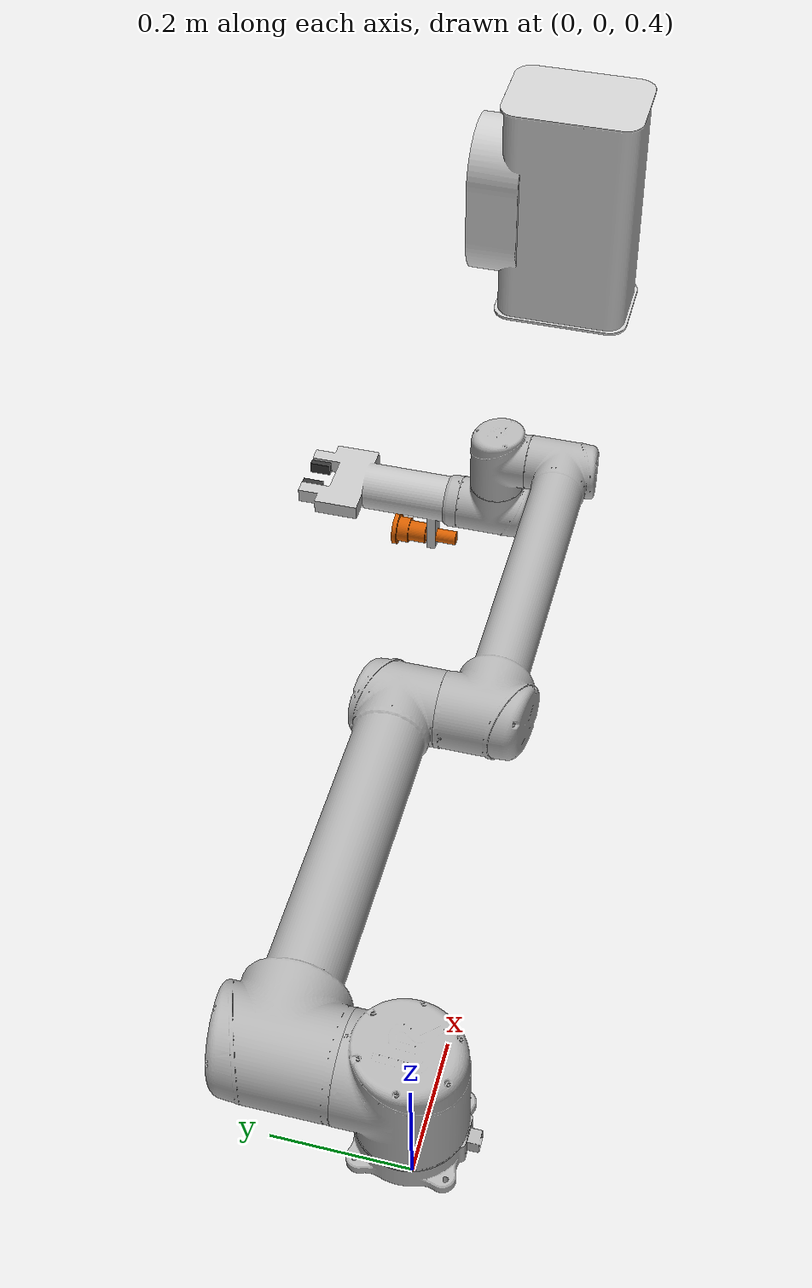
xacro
<?xml version="1.0"?>
<robot name="spacelab_robot" xmlns:xacro="http://www.ros.org/wiki/xacro">
    <!-- This file contain the robot core description -->
    <xacro:include filename="robot_core.xacro" />
    <!-- This file contain the gripper description and associated plugin -->
    <xacro:include filename="gripper.xacro" />
    <!-- This file contain the lidar description and associated plugin -->
    <xacro:include filename="lidar.xacro" />
    <!-- This file contain the camera description and associated plugin -->
    <xacro:include filename="camera.xacro" />
    <!-- This file contain the ros2 control parameters of the robot -->
    <xacro:include filename="$(find isaacsim_rviz_training)/description/ros2_control/ros2_control.xacro" />
</robot>

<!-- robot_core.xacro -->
<robot name="spacelab_robot" xmlns:xacro="http://www.ros.org/wiki/xacro">

  <!-- Add some parameters that will be post processed by xacro and replaced in the file -->
  <xacro:property name="PKG_Name" value="isaacsim_rviz_training" />

  <!-- Material definition. These materials will be used for vizualisation in RVIZ -->
  <material name="black">
    <color rgba="0.0 0.0 0.0 1.0"/>
  </material>

  <material name="blue">
    <color rgba="0.0 0.0 0.8 1.0"/>
  </material>

  <material name="green">
    <color rgba="0.0 0.8 0.0 1.0"/>
  </material>

  <material name="grey">
    <color rgba="0.2 0.2 0.2 1.0"/>
  </material>

  <material name="orange">
    <color rgba="${255/255} ${108/255} ${10/255} 1.0"/>
  </material>

  <material name="brown">
    <color rgba="${222/255} ${207/255} ${195/255} 1.0"/>
  </material>

  <material name="red">
    <color rgba="0.8 0.0 0.0 1.0"/>
  </material>

  <material name="white">
    <color rgba="1.0 1.0 1.0 1.0"/>
  </material>

  <!-- Used for fixing robot to the world -->
  <link name="world"/>

  <!-- This first joint is fixed and link the world and the link_1 -->
  <joint name="joint_world_1" type="fixed">
    <parent link="world"/>
    <child link="link_1"/>
    <origin rpy="0.0 0.0 0.0" xyz="0.0 0.0 0.5"/>
  </joint>

  <!-- Definition of the baselink corresponding to the robot base -->
  <link name="link_1">
    <visual>
      <geometry>
        <!-- but it's prefered to define the path relatively to the package -->
        <mesh filename="package://${PKG_Name}/description/meshes/Base.dae"/>
      </geometry>
      <material name="LightGrey">
        <color rgba="0.7 0.7 0.7 1.0"/>
      </material>
    </visual>
    <collision>
      <geometry>
        <mesh filename="package://${PKG_Name}/description/meshes/Base.dae"/>
      </geometry>
    </collision>
    <inertial>
      <mass value="4.0"/>
      <origin rpy="0.0 0.0 0.0" xyz="0.0 0.0 0.0"/>
      <inertia ixx="0.0061063308908" ixy="0.0" ixz="0.0" iyy="0.0061063308908" iyz="0.0" izz="0.01125"/>
    </inertial>
  </link>

  <!-- Definition of the 1st joint -->
  <joint name="joint_1_2" type="revolute">
    <parent link="link_1"/>
    <child link="link_2"/>
    <origin rpy="0.0 0.0 0.0" xyz="0.0 0.0 0.1273"/>
    <axis xyz="0 0 1"/>
    <limit effort="330.0" lower="-3.14159265" upper="3.14159265" velocity="2.16"/>
    <dynamics damping="10.0" friction="10.0"/>
  </joint>

  <!-- Definition of the 1st movable part of the robot -->
  <link name="link_2">
    <visual>
      <geometry>
        <mesh filename="package://${PKG_Name}/description/meshes/Shoulder.dae"/>
      </geometry>
      <material name="LightGrey">
        <color rgba="0.7 0.7 0.7 1.0"/>
      </material>
    </visual>
    <collision>
      <geometry>
        <mesh filename="package://${PKG_Name}/description/meshes/Shoulder.dae"/>
      </geometry>
    </collision>
    <inertial>
      <mass value="7.778"/>
      <origin rpy="0 0 0" xyz="0.0 0.0 0.0"/>
      <inertia ixx="0.0314743125769" ixy="0.0" ixz="0.0" iyy="0.0314743125769" iyz="0.0" izz="0.021875625"/>
    </inertial>
  </link>

  <!-- Definition of the 2nd joint -->
  <joint name="joint_2_3" type="revolute">
    <parent link="link_2"/>
    <child link="link_3"/>
    <origin rpy="0.0 1.570796325 0.0" xyz="0.0 0.220941 0.0"/>
    <axis xyz="0 1 0"/>
    <limit effort="330.0" lower="-3.14159265" upper="3.14159265" velocity="2.16"/>
    <dynamics damping="10.0" friction="10.0"/>
  </joint>

  <!-- Definition of the 2nd movable part of the robot -->
  <link name="link_3">
    <visual>
      <geometry>
        <mesh filename="package://${PKG_Name}/description/meshes/UpperArm.dae"/>
      </geometry>
      <material name="LightGrey">
        <color rgba="0.7 0.7 0.7 1.0"/>
      </material>
    </visual>
    <collision>
      <geometry>
        <mesh filename="package://${PKG_Name}/description/meshes/UpperArm.dae"/>
      </geometry>
    </collision>
    <inertial>
      <mass value="12.93"/>
      <origin rpy="0 0 0" xyz="0.0 0.0 0.306"/>
      <inertia ixx="0.421753803798" ixy="0.0" ixz="0.0" iyy="0.421753803798" iyz="0.0" izz="0.036365625"/>
    </inertial>
  </link>

  <!-- Definition of the 3rd joint -->
  <joint name="joint_3_4" type="revolute">
    <parent link="link_3"/>
    <child link="link_4"/>
    <origin rpy="0.0 0.0 0.0" xyz="0.0 -0.1719 0.612"/>
    <axis xyz="0 1 0"/>
    <limit effort="150.0" lower="-3.14159265" upper="3.14159265" velocity="3.15"/>
    <dynamics damping="10.0" friction="10.0"/>
  </joint>

  <!-- Definition of the 3rd movable part of the robot -->
  <link name="link_4">
    <visual>
      <geometry>
        <mesh filename="package://${PKG_Name}/description/meshes/Forearm.dae"/>
      </geometry>
      <material name="LightGrey">
        <color rgba="0.7 0.7 0.7 1.0"/>
      </material>
    </visual>
    <collision>
      <geometry>
        <mesh filename="package://${PKG_Name}/description/meshes/Forearm.dae"/>
      </geometry>
    </collision>
    <inertial>
      <mass value="3.87"/>
      <origin rpy="0 0 0" xyz="0.0 0.0 0.28615"/>
      <inertia ixx="0.111069694097" ixy="0.0" ixz="0.0" iyy="0.111069694097" iyz="0.0" izz="0.010884375"/>
    </inertial>
  </link>

  <!-- Definition of the 4th joint -->
  <joint name="joint_4_5" type="revolute">
    <parent link="link_4"/>
    <child link="link_5"/>
    <origin rpy="0.0 1.570796325 0.0" xyz="0.0 0.0 0.5723"/>
    <axis xyz="0 1 0"/>
    <limit effort="54.0" lower="-3.14159265" upper="3.14159265" velocity="3.2"/>
    <dynamics damping="10.0" friction="10.0"/>
  </joint>

  <!-- Definition of the 4th movable part of the robot -->
  <link name="link_5">
    <visual>
      <geometry>
        <mesh filename="package://${PKG_Name}/description/meshes/Wrist1.dae"/>
      </geometry>
      <material name="LightGrey">
        <color rgba="0.7 0.7 0.7 1.0"/>
      </material>
    </visual>
    <collision>
      <geometry>
        <mesh filename="package://${PKG_Name}/description/meshes/Wrist1.dae"/>
      </geometry>
    </collision>
    <inertial>
      <mass value="1.96"/>
      <origin rpy="0 0 0" xyz="0.0 0.0 0.0"/>
      <inertia ixx="0.0051082479567" ixy="0.0" ixz="0.0" iyy="0.0051082479567" iyz="0.0" izz="0.0055125"/>
    </inertial>
  </link>

  <!-- Definition of the 5th joint -->
  <joint name="joint_5_6" type="revolute">
    <parent link="link_5"/>
    <child link="link_6"/>
    <origin rpy="0.0 0.0 0.0" xyz="0.0 0.1149 0.0"/>
    <axis xyz="0 0 1"/>
    <limit effort="54.0" lower="-3.14159265" upper="3.14159265" velocity="3.2"/>
    <dynamics damping="10.0" friction="10.0"/>
  </joint>

  <!-- Definition of the 5th movable part of the robot -->
  <link name="link_6">
    <visual>
      <geometry>
        <mesh filename="package://${PKG_Name}/description/meshes/Wrist2.dae"/>
      </geometry>
      <material name="LightGrey">
        <color rgba="0.7 0.7 0.7 1.0"/>
      </material>
    </visual>
    <collision>
      <geometry>
        <mesh filename="package://${PKG_Name}/description/meshes/Wrist2.dae"/>
      </geometry>
    </collision>
    <inertial>
      <mass value="1.96"/>
      <origin rpy="0 0 0" xyz="0.0 0.0 0.0"/>
      <inertia ixx="0.0051082479567" ixy="0.0" ixz="0.0" iyy="0.0051082479567" iyz="0.0" izz="0.0055125"/>
    </inertial>
  </link>

  <!-- Definition of the 6th joint -->
  <joint name="joint_6_7" type="revolute">
    <parent link="link_6"/>
    <child link="link_7"/>
    <origin rpy="0.0 0.0 0.0" xyz="0.0 0.0 0.1157"/>
    <axis xyz="0 1 0"/>
    <limit effort="54.0" lower="-3.14159265" upper="3.14159265" velocity="3.2"/>
    <dynamics damping="10.0" friction="10.0"/>
  </joint>

  <!-- Definition of the 6th movable part of the robot -->
  <link name="link_7">
    <visual>
      <geometry>
        <mesh filename="package://${PKG_Name}/description/meshes/Wrist3.dae"/>
      </geometry>
      <material name="LightGrey">
        <color rgba="0.7 0.7 0.7 1.0"/>
      </material>
    </visual>
    <collision>
      <geometry>
        <mesh filename="package://${PKG_Name}/description/meshes/Wrist3.dae"/>
      </geometry>
    </collision>
    <inertial>
      <mass value="0.202"/>
      <origin rpy="0 0 0" xyz="0.0 0.0 0.0"/>
      <inertia ixx="0.000526462289415" ixy="0.0" ixz="0.0" iyy="0.000526462289415" iyz="0.0" izz="0.000568125"/>
    </inertial>
  </link>

</robot>

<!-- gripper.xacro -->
<robot name="spacelab_robot" xmlns:xacro="http://www.ros.org/wiki/xacro">

  <!-- Include the macro for simple shape inertia calculation -->
  <xacro:include filename="inertial_macros.xacro"/>

  <!-- Add some parameters that will be post processed by xacro and replaced in the file -->
  <xacro:property name="PKG_Name" value="isaacsim_rviz_training" />

  <!-- Add some parameters that will be post processed by xacro and replaced in the file -->
  <xacro:property name="EE_mass" value="1.0" /> <!-- mass of the end effector -->
  <xacro:property name="EE_x_position" value="0.0" /> <!-- x position of the end effector -->
  <xacro:property name="EE_y_position" value="0.0845" /> <!-- y position of the end effector -->
  <xacro:property name="EE_z_position" value="0.0" /> <!-- z position of the end effector -->
  <xacro:property name="EEfinger_x_size" value="0.01" /> <!-- x size of the end effector fingers -->
  <xacro:property name="EEfinger_y_size" value="0.035" /> <!-- y size of the end effector fingers -->
  <xacro:property name="EEfinger_z_size" value="0.02" /> <!-- z size of the end effector fingers -->

  <!-- Definition of the end effector joint that is fixed -->
  <joint name="joint_7_EE" type="fixed" >
    <parent link="link_7" />
    <child link="link_EE" />
    <!-- Use the EE position parameter -->
    <origin xyz="${EE_x_position} ${EE_y_position} ${EE_z_position}" rpy="0 0 3.141592" />
  </joint>

  <!-- Definition of the end effector link that is fixed -->
  <link name="link_EE" >
    <visual>
      <geometry>
        <mesh filename="package://${PKG_Name}/description/meshes/END_EFFECTOR.dae"/>
      </geometry>
    </visual>
    <collision>
      <geometry>
        <mesh filename="package://${PKG_Name}/description/meshes/END_EFFECTOR.dae"/>
      </geometry>
    </collision>
  </link>

  <!-- Define the end effector gripper left finger -->
  <link name="link_Lgripper">
    <xacro:inertial_box mass="0.1" x="${EEfinger_x_size}" y="${EEfinger_y_size}" z="${EEfinger_z_size}">
        <origin xyz="0 0 0" rpy="0 0 0"/>
    </xacro:inertial_box>
    <collision>
      <origin rpy="0 0 0" xyz="0.025 -0.238 0.0" />
      <geometry>
        <box size="${EEfinger_x_size} ${EEfinger_y_size} ${EEfinger_z_size}"/>
      </geometry>
    </collision>
    <visual>
      <origin rpy="0 0 0" xyz="0.025 -0.238 0.0" />
      <geometry>
        <box size="${EEfinger_x_size} ${EEfinger_y_size} ${EEfinger_z_size}"/>
      </geometry>
      <material name="grey">
        <color rgba="0.2 0.2 0.2 1"/>
      </material>
    </visual>
  </link>

  <!-- Define the prismatic joint between the end effector and the left finger -->
  <joint name="joint_EE_Lgripper" type="prismatic">
    <parent link="link_EE" />
    <child link="link_Lgripper" />
    <origin rpy="0 0 0" xyz="0 0 0" />
    <axis xyz="1 0 0" />
    <limit effort="500" lower="-0.02" upper="0.0" velocity="0.05"/>
    <dynamics damping="60.0" friction="4.0" />
  </joint>

  <!-- Define the end effector gripper right finger -->
  <link name="link_Rgripper">
    <xacro:inertial_box mass="0.1" x="${EEfinger_x_size}" y="${EEfinger_y_size}" z="${EEfinger_z_size}">
        <origin xyz="0 0 0" rpy="0 0 0"/>
    </xacro:inertial_box>
    <!-- No inertia for links that are fixed otherwise error -->
    <collision>
      <origin rpy="0 0 0" xyz="-0.025 -0.238 0.0" />
      <geometry>
        <box size="${EEfinger_x_size} ${EEfinger_y_size} ${EEfinger_z_size}"/>
      </geometry>
    </collision>
    <visual>
      <origin rpy="0 0 0" xyz="-0.025 -0.238 0.0" />
      <geometry>
        <box size="${EEfinger_x_size} ${EEfinger_y_size} ${EEfinger_z_size}"/>
      </geometry>
      <material name="grey">
        <color rgba="0.2 0.2 0.2 1"/>
      </material>
    </visual>
  </link>

  <!-- Define the prismatic joint between the end effector and the right finger -->
  <joint name="joint_EE_Rgripper" type="prismatic">
    <parent link="link_EE" />
    <child link="link_Rgripper" />
    <origin rpy="0 0 0" xyz="0 0 0" />
    <axis xyz="1 0 0" />
    <limit effort="500" lower="0.0" upper="0.02" velocity="0.05"/>
    <dynamics damping="60.0" friction="4.0" />
  </joint>

</robot>

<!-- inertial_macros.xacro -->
<robot xmlns:xacro="http://www.ros.org/wiki/xacro" >

    <!-- Specify standard inertial calculations https://en.wikipedia.org/wiki/List_of_moments_of_inertia -->
    <!-- These make use of xacro's mathematical functionality -->

    <xacro:macro name="inertial_sphere" params="mass radius *origin">
        <inertial>
            <xacro:insert_block name="origin"/>
            <mass value="${mass}" />
            <inertia ixx="${(2/5) * mass * (radius*radius)}" ixy="0.0" ixz="0.0"
                    iyy="${(2/5) * mass * (radius*radius)}" iyz="0.0"
                    izz="${(2/5) * mass * (radius*radius)}" />
        </inertial>
    </xacro:macro>

    <xacro:macro name="inertial_box" params="mass x y z *origin">
        <inertial>
            <xacro:insert_block name="origin"/>
            <mass value="${mass}" />
            <inertia ixx="${(1/12) * mass * (y*y+z*z)}" ixy="0.0" ixz="0.0"
                    iyy="${(1/12) * mass * (x*x+z*z)}" iyz="0.0"
                    izz="${(1/12) * mass * (x*x+y*y)}" />
        </inertial>
    </xacro:macro>

    <xacro:macro name="inertial_cylinder" params="mass length radius *origin">
        <inertial>
            <xacro:insert_block name="origin"/>
            <mass value="${mass}" />
            <inertia ixx="${(1/12) * mass * (3*radius*radius + length*length)}" ixy="0.0" ixz="0.0"
                    iyy="${(1/12) * mass * (3*radius*radius + length*length)}" iyz="0.0"
                    izz="${(1/2) * mass * (radius*radius)}" />
        </inertial>
    </xacro:macro>

</robot>

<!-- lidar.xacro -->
<robot name="spacelab_robot" xmlns:xacro="http://www.ros.org/wiki/xacro">

    <!-- Definition of the lidar joint -->
    <joint name="joint_world_lidar" type="fixed">
      <origin xyz="0.8 0.0 1.4" rpy="3.141592 0.0 3.141592" />
      <parent link="world"/>
      <child link="link_lidar"/>
    </joint>

    <!-- Definition of the lidar link that will be used to position the 3D shape -->
    <link name="link_lidar">
      <inertial>
        <origin xyz="0 0 0"/>
        <mass value="1.0" />
        <inertia ixx="0.003" ixy="0" ixz="0"
          iyy="0.003" iyz="0"
          izz="0.009"/>
      </inertial>
      <visual>
        <geometry>
        <mesh filename="package://${PKG_Name}/description/meshes/LIDAR.dae"/>
        </geometry>
      </visual>
      <collision>
        <geometry>
        <mesh filename="package://${PKG_Name}/description/meshes/LIDAR.dae"/>
        </geometry>
      </collision>
    </link>

    <!-- Definition of additional lidar joint that will be used to position the lidar focal-->
    <joint name="joint_lidar_laser" type="fixed">
      <origin xyz="0.0 0.0 0.0" rpy="0.0 -1.570796 0.0" />
      <parent link="link_lidar"/>
      <child link="link_laser"/>
    </joint>

    <link name="link_laser">
    </link>

    <!-- Definition of the lidar as a ray sensor inside gazebo -->
    <gazebo reference="link_laser">
        <sensor type="ray" name="lidar_3d">
          <pose>0 0 0 0 0 0</pose>
          <visualize>false</visualize>
          <update_rate>10</update_rate>
          <ray>
            <scan>
              <horizontal>
                <samples>50</samples>
                <resolution>1</resolution>
                <min_angle>-0.2</min_angle>
                <max_angle>0.2</max_angle>
              </horizontal>
              <vertical>
                <samples>50</samples>
                <resolution>1</resolution>
                <min_angle>-0.2</min_angle>
                <max_angle>0.2</max_angle>
              </vertical>
            </scan>
            <range>
              <min>0.3</min>
              <max>10.0</max>
              <resolution>0.001</resolution>
            </range>
            <noise>
              <type>gaussian</type>
              <mean>0.0</mean>
              <stddev>0.0</stddev>
            </noise>
          </ray>
          <!-- Gazebo requires the velodyne_gazebo_plugins package to simulate the interfaces of the LIDAR-->
          <plugin name="gazebo_ros_laser_controller" filename="libgazebo_ros_lidar_3d.so">
            <topicName>/lidar_3d_points</topicName>
            <frameName>link_laser</frameName>
            <min_range>0.3</min_range>
            <max_range>10.0</max_range>
            <gaussianNoise>0.0005</gaussianNoise>
          </plugin>
        </sensor>
    </gazebo>

</robot>

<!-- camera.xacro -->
<robot name="spacelab_robot" xmlns:xacro="http://www.ros.org/wiki/xacro">

  <!-- Add some parameters that will be post processed by xacro and replaced in the file -->
  <xacro:property name="PKG_Name" value="isaacsim_rviz_training" />

  <!-- Definition of the camera joint -->
  <joint name="joint_EE_cam3D" type="fixed">
    <axis xyz="0 1 0" />
    <origin xyz="0 -0.025 0.09" rpy="0 0 0"/>
    <parent link="link_EE"/>
    <child link="link_cam3D"/>
  </joint>

  <!-- Definition of the camera link that will be used to position the 3D shape -->
  <link name="link_cam3D">
    <collision>
        <geometry>
        <mesh filename="package://${PKG_Name}/description/meshes/CAMERA.dae"/>
        </geometry>
    </collision>
    <visual>
        <geometry>
        <mesh filename="package://${PKG_Name}/description/meshes/CAMERA.dae"/>
        </geometry>
    </visual>
    <inertial>
      <mass value="1e-5" />
      <origin xyz="0 0 0" rpy="0 0 0"/>
      <inertia ixx="1e-6" ixy="0" ixz="0" iyy="1e-6" iyz="0" izz="1e-6" />
    </inertial>
  </link>

  <!-- Definition of additional camera joint that will be used to position the camera sensor-->
  <joint name="joint_cam3D_camSensor" type="fixed">
    <axis xyz="0 1 0" />
    <origin xyz="0 -0.05 0" rpy="0 0 -1.570796"/>
    <parent link="link_cam3D"/>
    <child link="link_camSensor"/>
  </joint>

  <link name="link_camSensor">
  </link>

  <!-- Definition of additional camera joint that will be used to position the camera focal-->
  <joint name="joint_camSensor_camFocale" type="fixed">
    <origin xyz="0 0 0" rpy="-1.570796 0 -1.570796"/>
    <parent link="link_camSensor"/>
    <child link="link_camFocale"/>
  </joint>

  <link name="link_camFocale">
  </link>

  <!-- Definition of the camera as a sensor inside gazebo -->
  <gazebo reference="link_camSensor">
    <sensor type="camera" name="camera1">
      <pose> 0 0 0 0 0 0 </pose>
      <!-- Can be turned to true in order to activate vizualisation in gazebo -->
      <visualize>false</visualize>
      <update_rate>10</update_rate>
      <camera name="head">
        <horizontal_fov>1.3962634</horizontal_fov>
        <image>
          <width>800</width>
          <height>800</height>
          <format>R8G8B8</format>
        </image>
        <clip>
          <near>0.05</near>
          <far>10</far>
        </clip>
        <noise>
          <type>gaussian</type>
          <mean>0.0</mean>
          <stddev>0.007</stddev>
        </noise>
      </camera>
      <!-- Definition of the gazebo plugin to be used to simulmate the camera interfaces -->
      <plugin name="camera_controller" filename="libgazebo_ros_camera.so">
        <frameName>link_camFocale</frameName>
      </plugin>
    </sensor>
  </gazebo>

</robot>
